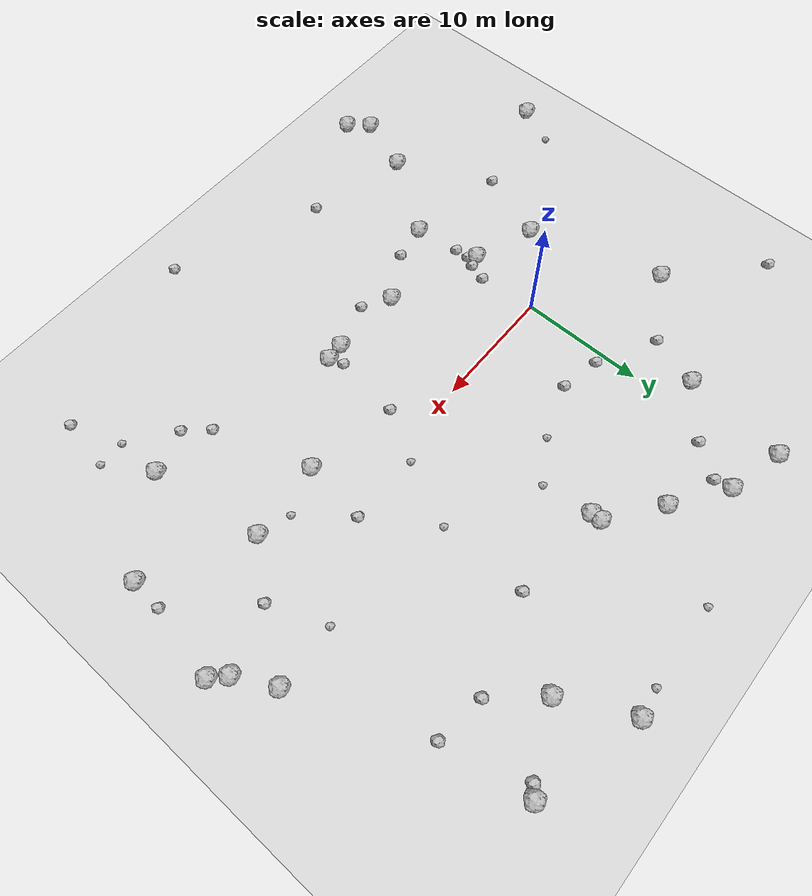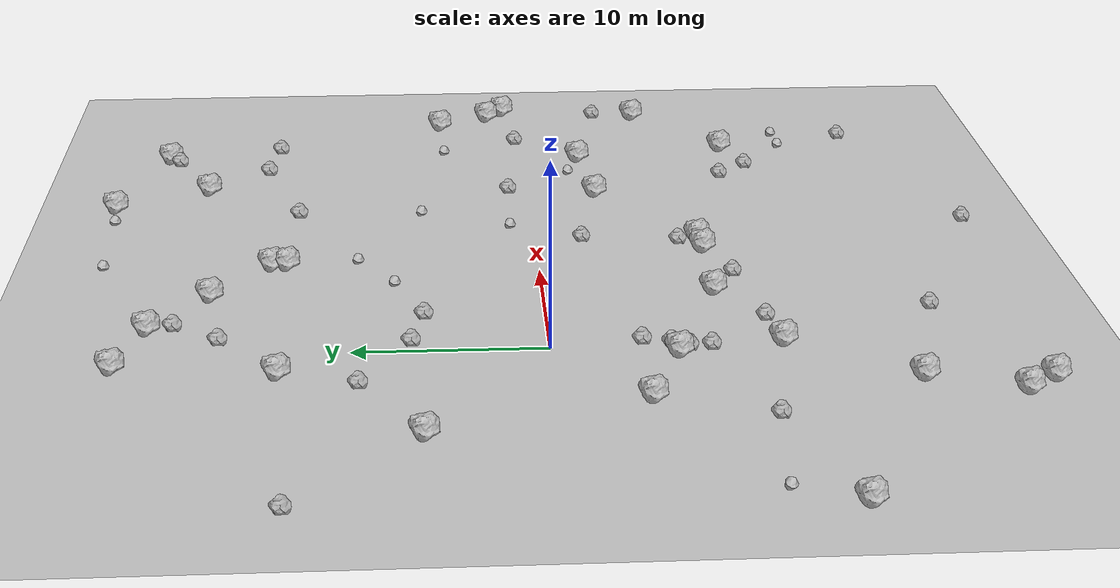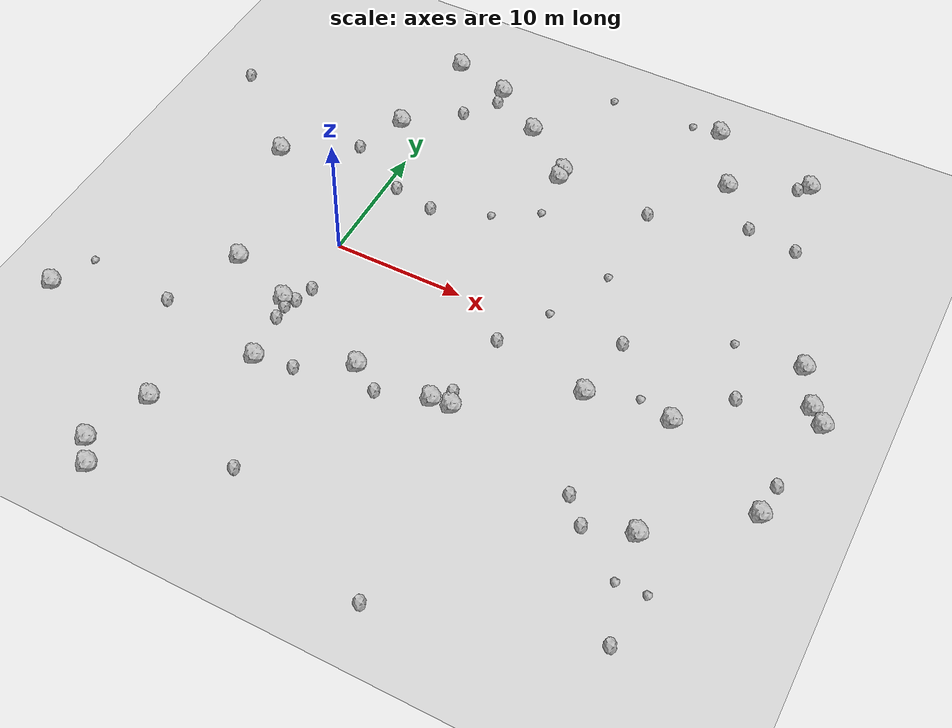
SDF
<sdf version="1.6">
 <world name="default">
  <include><uri>model://custom_ground</uri></include>
  <include><uri>model://sun</uri></include>
  <model name="rock1_0_0">
   <include><uri>model://rock1</uri><pose>-2.3179333578813264 13.560882379770803 0.5 0 0 0</pose></include>
  </model>
  <model name="rock1_0_1">
   <include><uri>model://rock1</uri><pose>35.42879417177929 -7.32027476160393 0.5 0 0 0</pose></include>
  </model>
  <model name="rock1_0_2">
   <include><uri>model://rock1</uri><pose>21.581545104936787 -3.8465649257423635 0.5 0 0 0</pose></include>
  </model>
  <model name="rock1_0_3">
   <include><uri>model://rock1</uri><pose>14.154558860241679 -9.086605189511875 0.5 0 0 0</pose></include>
  </model>
  <model name="rock1_0_4">
   <include><uri>model://rock1</uri><pose>27.65853363959293 -3.230656400104543 0.5 0 0 0</pose></include>
  </model>
  <model name="rock1_0_5">
   <include><uri>model://rock1</uri><pose>29.094546418056844 -12.289263828323172 0.5 0 0 0</pose></include>
  </model>
  <model name="rock1_0_6">
   <include><uri>model://rock1</uri><pose>3.198670501860949 20.49417938783744 0.5 0 0 0</pose></include>
  </model>
  <model name="rock1_0_7">
   <include><uri>model://rock1</uri><pose>0.24017302983536126 -11.786511357522208 0.5 0 0 0</pose></include>
  </model>
  <model name="rock1_0_8">
   <include><uri>model://rock1</uri><pose>23.03232408651691 19.011693689634235 0.5 0 0 0</pose></include>
  </model>
  <model name="rock1_0_9">
   <include><uri>model://rock1</uri><pose>-5.743131616759921 -4.579162004420187 0.5 0 0 0</pose></include>
  </model>
  <model name="rock1_0_10">
   <include><uri>model://rock1</uri><pose>36.63659674533312 1.1256504691619753 0.5 0 0 0</pose></include>
  </model>
  <model name="rock1_0_11">
   <include><uri>model://rock1</uri><pose>11.309967775192554 13.801374216508073 0.5 0 0 0</pose></include>
  </model>
  <model name="rock1_0_12">
   <include><uri>model://rock1</uri><pose>20.40131893221796 24.209533620573623 0.5 0 0 0</pose></include>
  </model>
  <model name="rock1_0_13">
   <include><uri>model://rock1</uri><pose>33.9714327469201 5.185652311127356 0.5 0 0 0</pose></include>
  </model>
  <model name="rock1_0_14">
   <include><uri>model://rock1</uri><pose>12.68814462211909 -9.212461563729967 0.5 0 0 0</pose></include>
  </model>
  <model name="rock1_0_15">
   <include><uri>model://rock1</uri><pose>-4.495454815119269 -24.41063740558753 0.5 0 0 0</pose></include>
  </model>
  <model name="rock1_0_16">
   <include><uri>model://rock1</uri><pose>-16.2600233374851 -12.978320971455904 0.5 0 0 0</pose></include>
  </model>
  <model name="rock1_0_17">
   <include><uri>model://rock1</uri><pose>-1.277852879630828 21.734546999537862 0.5 0 0 0</pose></include>
  </model>
  <model name="rock1_0_18">
   <include><uri>model://rock1</uri><pose>35.538360486798894 2.1798920704354785 0.5 0 0 0</pose></include>
  </model>
  <model name="rock1_0_19">
   <include><uri>model://rock1</uri><pose>-9.039252355263388 6.359858653403421 0.5 0 0 0</pose></include>
  </model>
  <model name="rock1_0_20">
   <include><uri>model://rock1</uri><pose>-0.7985197492981371 -6.389997465224059 0.5 0 0 0</pose></include>
  </model>
  <model name="rock1_0_21">
   <include><uri>model://rock1</uri><pose>6.826980417559213 -9.06796743425366 0.5 0 0 0</pose></include>
  </model>
  <model name="rock1_0_22">
   <include><uri>model://rock1</uri><pose>-5.800979872090526 -22.76597659327219 0.5 0 0 0</pose></include>
  </model>
  <model name="rock1_0_23">
   <include><uri>model://rock1</uri><pose>7.272387600494859 17.61991123202018 0.5 0 0 0</pose></include>
  </model>
  <model name="rock1_0_24">
   <include><uri>model://rock1</uri><pose>-4.086814954762641 -18.043475079565905 0.5 0 0 0</pose></include>
  </model>
  <model name="rock1_0_25">
   <include><uri>model://rock1</uri><pose>28.602862980748334 21.847904795090813 0.5 0 0 0</pose></include>
  </model>
  <model name="rock1_0_26">
   <include><uri>model://rock1</uri><pose>11.284858371103642 14.621078858084417 0.5 0 0 0</pose></include>
  </model>
  <model name="rock2_0_0">
   <include><uri>model://rock2</uri><pose>0.5463026047976562 -4.640105250451377 0.3 0 0 0</pose></include>
  </model>
  <model name="rock2_0_1">
   <include><uri>model://rock2</uri><pose>26.00869314270973 15.65532478216906 0.3 0 0 0</pose></include>
  </model>
  <model name="rock2_0_2">
   <include><uri>model://rock2</uri><pose>22.154533138157788 1.2678934521407648 0.3 0 0 0</pose></include>
  </model>
  <model name="rock2_0_3">
   <include><uri>model://rock2</uri><pose>13.720953628431367 -7.947625316800611 0.3 0 0 0</pose></include>
  </model>
  <model name="rock2_0_4">
   <include><uri>model://rock2</uri><pose>-7.989690144838635 -10.376225260570607 0.3 0 0 0</pose></include>
  </model>
  <model name="rock2_0_5">
   <include><uri>model://rock2</uri><pose>-0.2792132185209404 -8.091818863086328 0.3 0 0 0</pose></include>
  </model>
  <model name="rock2_0_6">
   <include><uri>model://rock2</uri><pose>27.835957108695894 21.232729382300192 0.3 0 0 0</pose></include>
  </model>
  <model name="rock2_0_7">
   <include><uri>model://rock2</uri><pose>25.739267921812505 -13.394298329485125 0.3 0 0 0</pose></include>
  </model>
  <model name="rock2_0_8">
   <include><uri>model://rock2</uri><pose>4.212172429432936 6.347844747802434 0.3 0 0 0</pose></include>
  </model>
  <model name="rock2_0_9">
   <include><uri>model://rock2</uri><pose>16.18523214950892 -24.677823639163925 0.3 0 0 0</pose></include>
  </model>
  <model name="rock2_0_10">
   <include><uri>model://rock2</uri><pose>18.814040897604322 13.48808018215108 0.3 0 0 0</pose></include>
  </model>
  <model name="rock2_0_11">
   <include><uri>model://rock2</uri><pose>3.3902720927348966 19.188910628032637 0.3 0 0 0</pose></include>
  </model>
  <model name="rock2_0_12">
   <include><uri>model://rock2</uri><pose>30.75988119830958 0.5365990000301863 0.3 0 0 0</pose></include>
  </model>
  <model name="rock2_0_13">
   <include><uri>model://rock2</uri><pose>-15.79756155092216 12.574645919020163 0.3 0 0 0</pose></include>
  </model>
  <model name="rock2_0_14">
   <include><uri>model://rock2</uri><pose>30.734799648009 -20.088682091205484 0.3 0 0 0</pose></include>
  </model>
  <model name="rock2_0_15">
   <include><uri>model://rock2</uri><pose>35.617320170198305 -4.750661294031065 0.3 0 0 0</pose></include>
  </model>
  <model name="rock2_0_16">
   <include><uri>model://rock2</uri><pose>-0.3264794654034695 -6.935395551641818 0.3 0 0 0</pose></include>
  </model>
  <model name="rock2_0_17">
   <include><uri>model://rock2</uri><pose>14.337470174045734 -2.5625191978718327 0.3 0 0 0</pose></include>
  </model>
  <model name="rock2_0_18">
   <include><uri>model://rock2</uri><pose>1.5543590172975144 16.74558341341629 0.3 0 0 0</pose></include>
  </model>
  <model name="rock2_0_19">
   <include><uri>model://rock2</uri><pose>8.976806714405605 -10.399571308252092 0.3 0 0 0</pose></include>
  </model>
  <model name="rock2_0_20">
   <include><uri>model://rock2</uri><pose>0.9514570624525831 7.001598513136983 0.3 0 0 0</pose></include>
  </model>
  <model name="rock2_0_21">
   <include><uri>model://rock2</uri><pose>24.128626590346094 -11.646652468917026 0.3 0 0 0</pose></include>
  </model>
  <model name="rock2_0_22">
   <include><uri>model://rock2</uri><pose>-3.7603999779578317 9.558205634559606 0.3 0 0 0</pose></include>
  </model>
  <model name="rock2_0_23">
   <include><uri>model://rock2</uri><pose>4.071835118737262 -20.104944339322422 0.3 0 0 0</pose></include>
  </model>
  <model name="rock2_0_24">
   <include><uri>model://rock2</uri><pose>29.811284602996906 15.153143464207147 0.3 0 0 0</pose></include>
  </model>
  <model name="rock2_0_25">
   <include><uri>model://rock2</uri><pose>3.100491064064798 -11.308121044746528 0.3 0 0 0</pose></include>
  </model>
  <model name="rock2_0_26">
   <include><uri>model://rock2</uri><pose>0.10401981901976143 -6.083960708332988 0.3 0 0 0</pose></include>
  </model>
  <model name="rock3_0_0">
   <include><uri>model://rock3</uri><pose>16.490904006436367 1.3498611615530116 0.2 0 0 0</pose></include>
  </model>
  <model name="rock3_0_1">
   <include><uri>model://rock3</uri><pose>11.502678683504737 23.762554681959024 0.2 0 0 0</pose></include>
  </model>
  <model name="rock3_0_2">
   <include><uri>model://rock3</uri><pose>11.71104165336104 9.89098389388073 0.2 0 0 0</pose></include>
  </model>
  <model name="rock3_0_3">
   <include><uri>model://rock3</uri><pose>25.10708369541971 -2.5208305269198448 0.2 0 0 0</pose></include>
  </model>
  <model name="rock3_0_4">
   <include><uri>model://rock3</uri><pose>18.738380752692542 6.394485886884183 0.2 0 0 0</pose></include>
  </model>
  <model name="rock3_0_5">
   <include><uri>model://rock3</uri><pose>8.499700348426071 7.86978208536997 0.2 0 0 0</pose></include>
  </model>
  <model name="rock3_0_6">
   <include><uri>model://rock3</uri><pose>18.173485029757586 23.97292818734269 0.2 0 0 0</pose></include>
  </model>
  <model name="rock3_0_7">
   <include><uri>model://rock3</uri><pose>-14.897465942850978 -9.738426541859006 0.2 0 0 0</pose></include>
  </model>
  <model name="rock3_0_8">
   <include><uri>model://rock3</uri><pose>29.2252205034496 -16.04168563881981 0.2 0 0 0</pose></include>
  </model>
  <model name="rock3_0_9">
   <include><uri>model://rock3</uri><pose>31.35086204368308 -15.941731130507753 0.2 0 0 0</pose></include>
  </model>
  <model name="rock3_0_10">
   <include><uri>model://rock3</uri><pose>28.98278875884275 4.963873967362112 0.2 0 0 0</pose></include>
  </model>
 </world>
</sdf>
